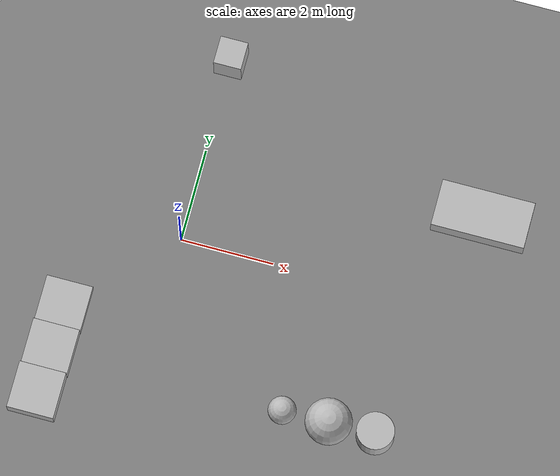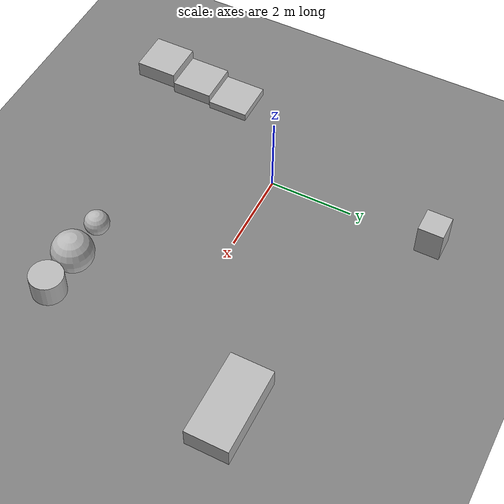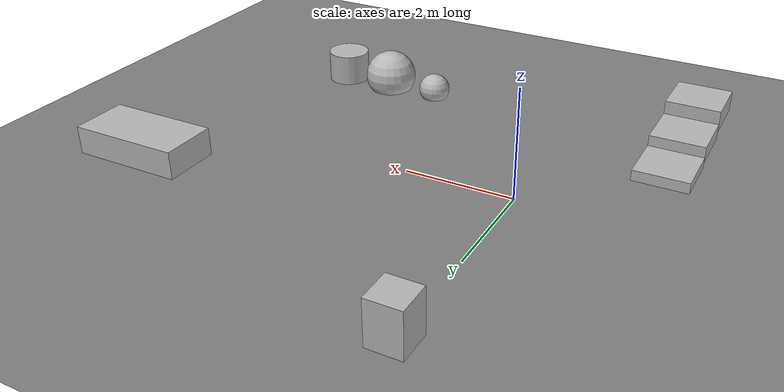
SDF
<sdf version="1.8">
 <world name="default">
  <plugin filename="gz-sim-physics-system" name="gz::sim::systems::Physics"/>
  <plugin filename="gz-sim-user-commands-system" name="gz::sim::systems::UserCommands"/>
  <plugin filename="gz-sim-scene-broadcaster-system" name="gz::sim::systems::SceneBroadcaster"/>
  <plugin filename="gz-sim-sensors-system" name="gz::sim::systems::Sensors">
   <render_engine>ogre2</render_engine>
  </plugin>
  <plugin filename="gz-sim-imu-system" name="gz::sim::systems::Imu"/>
  <light type="directional" name="sun">
   <pose>0 0 20 0 0 0</pose>
   <diffuse>1 1 1 1</diffuse>
   <specular>0.5 0.5 0.5 1</specular>
   <attenuation>
    <range>100</range>
    <constant>0.9</constant>
    <linear>0.01</linear>
    <quadratic>0.001</quadratic>
   </attenuation>
   <direction>-0.5 0.1 -0.9</direction>
  </light>
  <model name="ground_plane">
   <static>true</static>
   <link name="link">
    <collision name="collision">
     <geometry><plane><normal>0 0 1</normal><size>100 100</size></plane></geometry>
     <surface><friction><ode><mu>1.0</mu><mu2>1.0</mu2></ode></friction></surface>
    </collision>
    <visual name="visual">
     <geometry><plane><normal>0 0 1</normal><size>100 100</size></plane></geometry>
     <material>
      <ambient>0.5 0.5 0.5 1</ambient>
      <diffuse>0.5 0.5 0.5 1</diffuse>
      <specular>0.1 0.1 0.1 1</specular>
     </material>
    </visual>
   </link>
  </model>
  <model name="ramp_down">
   <static>true</static>
   <pose>6 2 0.3 0 0 3.14159</pose>
   <link name="link">
    <collision name="collision">
     <geometry><box><size>2.0 1.0 0.5</size></box></geometry>
     <pose>0 0 0.25 0 0 0</pose>
    </collision>
    <visual name="visual">
     <geometry><box><size>2.0 1.0 0.5</size></box></geometry>
     <pose>0 0 0.25 0 0 0</pose>
    </visual>
   </link>
  </model>
  <model name="step_1">
   <static>true</static>
   <pose>-2 -2 0.1 0 0 0</pose>
   <link name="link">
    <collision name="collision"><geometry><box><size>1.0 1.0 0.2</size></box></geometry></collision>
    <visual name="visual"><geometry><box><size>1.0 1.0 0.2</size></box></geometry></visual>
   </link>
  </model>
  <model name="step_2">
   <static>true</static>
   <pose>-2 -3 0.25 0 0 0</pose>
   <link name="link">
    <collision name="collision"><geometry><box><size>1.0 1.0 0.3</size></box></geometry></collision>
    <visual name="visual"><geometry><box><size>1.0 1.0 0.3</size></box></geometry></visual>
   </link>
  </model>
  <model name="step_3">
   <static>true</static>
   <pose>-2 -4 0.45 0 0 0</pose>
   <link name="link">
    <collision name="collision"><geometry><box><size>1.0 1.0 0.4</size></box></geometry></collision>
    <visual name="visual"><geometry><box><size>1.0 1.0 0.4</size></box></geometry></visual>
   </link>
  </model>
  <model name="bump_1">
   <static>true</static>
   <pose>3 -3 0.15 0 0 0</pose>
   <link name="link">
    <collision name="collision"><geometry><sphere><radius>0.3</radius></sphere></geometry></collision>
    <visual name="visual"><geometry><sphere><radius>0.3</radius></sphere></geometry></visual>
   </link>
  </model>
  <model name="bump_2">
   <static>true</static>
   <pose>4 -3 0.25 0 0 0</pose>
   <link name="link">
    <collision name="collision"><geometry><sphere><radius>0.5</radius></sphere></geometry></collision>
    <visual name="visual"><geometry><sphere><radius>0.5</radius></sphere></geometry></visual>
   </link>
  </model>
  <model name="bump_3">
   <static>true</static>
   <pose>5 -3 0.3 0 0 0</pose>
   <link name="link">
    <collision name="collision">
     <geometry><cylinder><radius>0.4</radius><length>0.6</length></cylinder></geometry>
    </collision>
    <visual name="visual">
     <geometry><cylinder><radius>0.4</radius><length>0.6</length></cylinder></geometry>
    </visual>
   </link>
  </model>
  <model name="box_obstacle">
   <static>true</static>
   <pose>0 4 0.4 0 0 0</pose>
   <link name="link">
    <collision name="collision"><geometry><box><size>0.6 0.6 0.8</size></box></geometry></collision>
    <visual name="visual"><geometry><box><size>0.6 0.6 0.8</size></box></geometry></visual>
   </link>
  </model>
 </world>
</sdf>
